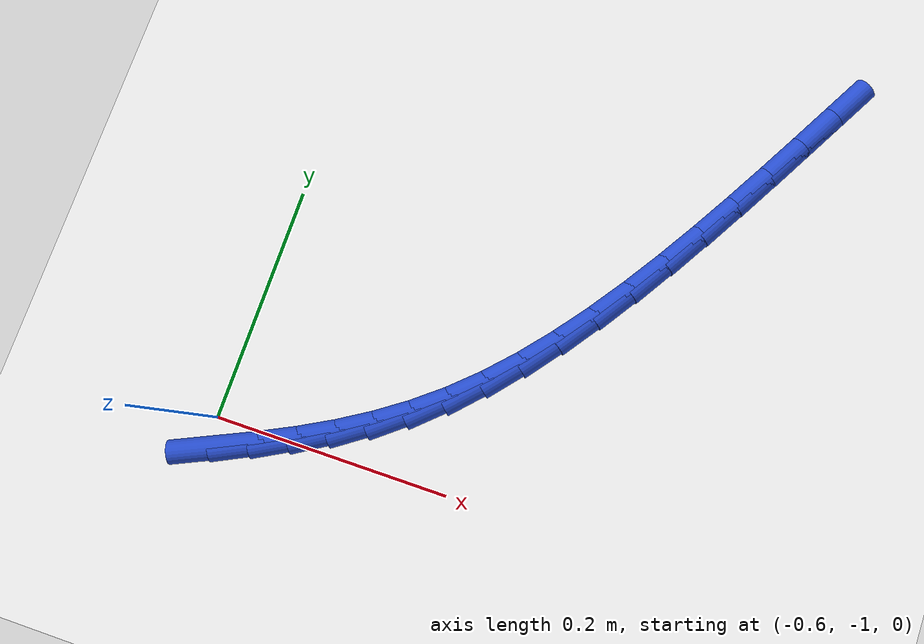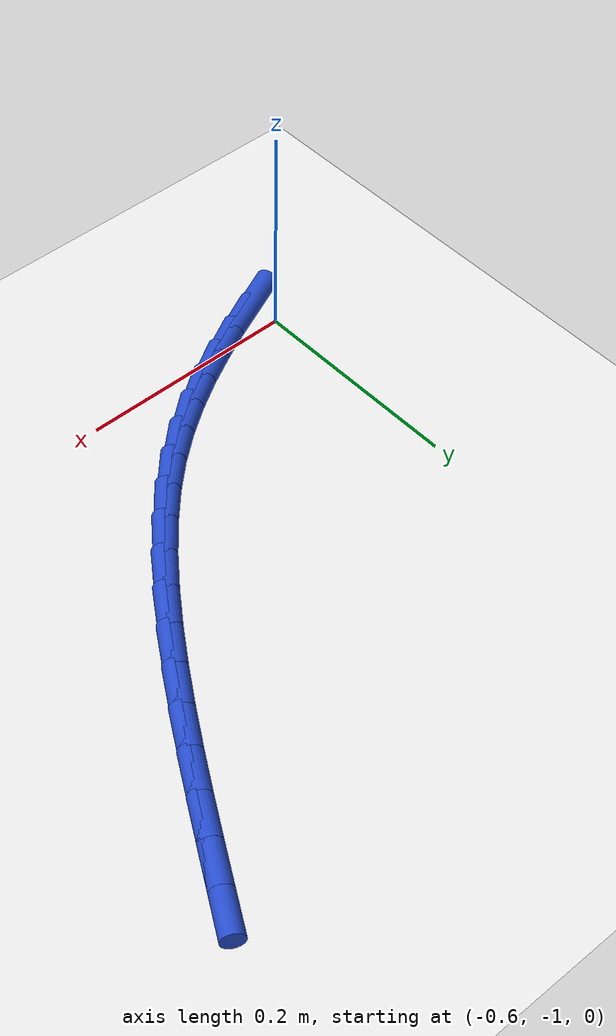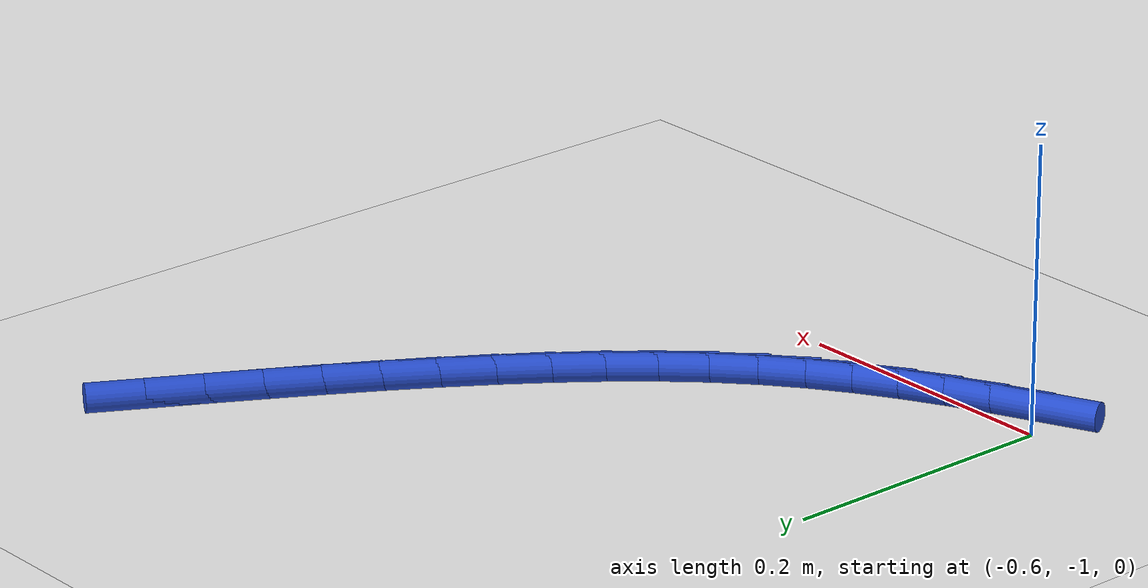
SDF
<sdf version="1.6">
 <world name="default">
  <model name="ground_plane">
   <static>1</static>
   <link name="link">
    <collision name="collision">
     <geometry><plane><normal>0 0 1</normal><size>100 100</size></plane></geometry>
     <surface><friction><ode><mu>100</mu><mu2>50</mu2></ode></friction></surface>
    </collision>
    <visual name="visual">
     <cast_shadows>0</cast_shadows>
     <geometry><plane><normal>0 0 1</normal><size>100 100</size></plane></geometry>
     <material>
      <script><uri>file://media/materials/scripts/gazebo.material</uri><name>Gazebo/WhiteGlow</name></script>
     </material>
    </visual>
   </link>
  </model>
  <model name="line">
   <link name="link_176">
    <pose>-0.5875828172011949 -1.0216153455883414 0.01 0 1.57 0.42339597536660534</pose>
    <collision name="collision">
     <geometry><cylinder><radius>0.01</radius><length>0.08</length></cylinder></geometry>
    </collision>
    <visual name="visual">
     <material>
      <script><name>Gazebo/Blue</name><uri>file://media/materials/scripts/gazebo.material</uri></script>
     </material>
     <geometry><cylinder><radius>0.01</radius><length>0.08</length></cylinder></geometry>
    </visual>
   </link>
   <link name="link_177">
    <pose>-0.5576132053573409 -1.0081094808719315 0.01 0 1.57 0.45502316544602234</pose>
    <collision name="collision">
     <geometry><cylinder><radius>0.01</radius><length>0.08</length></cylinder></geometry>
    </collision>
    <visual name="visual">
     <material>
      <script><name>Gazebo/Blue</name><uri>file://media/materials/scripts/gazebo.material</uri></script>
     </material>
     <geometry><cylinder><radius>0.01</radius><length>0.08</length></cylinder></geometry>
    </visual>
   </link>
   <link name="link_178">
    <pose>-0.5287030088568608 -0.9939647200197931 0.01 0 1.57 0.49657695041433797</pose>
    <collision name="collision">
     <geometry><cylinder><radius>0.01</radius><length>0.08</length></cylinder></geometry>
    </collision>
    <visual name="visual">
     <material>
      <script><name>Gazebo/Blue</name><uri>file://media/materials/scripts/gazebo.material</uri></script>
     </material>
     <geometry><cylinder><radius>0.01</radius><length>0.08</length></cylinder></geometry>
    </visual>
   </link>
   <link name="link_179">
    <pose>-0.5008143464244045 -0.9788527986550711 0.01 0 1.57 0.5476124282187314</pose>
    <collision name="collision">
     <geometry><cylinder><radius>0.01</radius><length>0.08</length></cylinder></geometry>
    </collision>
    <visual name="visual">
     <material>
      <script><name>Gazebo/Blue</name><uri>file://media/materials/scripts/gazebo.material</uri></script>
     </material>
     <geometry><cylinder><radius>0.01</radius><length>0.08</length></cylinder></geometry>
    </visual>
   </link>
   <link name="link_180">
    <pose>-0.47390933678462216 -0.9624454524009125 0.01 0 1.57 0.6070860722191753</pose>
    <collision name="collision">
     <geometry><cylinder><radius>0.01</radius><length>0.08</length></cylinder></geometry>
    </collision>
    <visual name="visual">
     <material>
      <script><name>Gazebo/Blue</name><uri>file://media/materials/scripts/gazebo.material</uri></script>
     </material>
     <geometry><cylinder><radius>0.01</radius><length>0.08</length></cylinder></geometry>
    </visual>
   </link>
   <link name="link_181">
    <pose>-0.4479500986621639 -0.9444144168804623 0.01 0 1.57 0.6733254377851698</pose>
    <collision name="collision">
     <geometry><cylinder><radius>0.01</radius><length>0.08</length></cylinder></geometry>
    </collision>
    <visual name="visual">
     <material>
      <script><name>Gazebo/Blue</name><uri>file://media/materials/scripts/gazebo.material</uri></script>
     </material>
     <geometry><cylinder><radius>0.01</radius><length>0.08</length></cylinder></geometry>
    </visual>
   </link>
   <link name="link_182">
    <pose>-0.4228987507816797 -0.9244314277168667 0.01 0 1.57 0.7437917523756384</pose>
    <collision name="collision">
     <geometry><cylinder><radius>0.01</radius><length>0.08</length></cylinder></geometry>
    </collision>
    <visual name="visual">
     <material>
      <script><name>Gazebo/Blue</name><uri>file://media/materials/scripts/gazebo.material</uri></script>
     </material>
     <geometry><cylinder><radius>0.01</radius><length>0.08</length></cylinder></geometry>
    </visual>
   </link>
   <link name="link_183">
    <pose>-0.39871671799292546 -0.9021823426035044 0.01 0 1.57 0.8099721002649177</pose>
    <collision name="collision">
     <geometry><cylinder><radius>0.01</radius><length>0.08</length></cylinder></geometry>
    </collision>
    <visual name="visual">
     <material>
      <script><name>Gazebo/Blue</name><uri>file://media/materials/scripts/gazebo.material</uri></script>
     </material>
     <geometry><cylinder><radius>0.01</radius><length>0.08</length></cylinder></geometry>
    </visual>
   </link>
   <link name="link_184">
    <pose>-0.3753513518892208 -0.8776394448091553 0.01 0 1.57 0.8661649480975883</pose>
    <collision name="collision">
     <geometry><cylinder><radius>0.01</radius><length>0.08</length></cylinder></geometry>
    </collision>
    <visual name="visual">
     <material>
      <script><name>Gazebo/Blue</name><uri>file://media/materials/scripts/gazebo.material</uri></script>
     </material>
     <geometry><cylinder><radius>0.01</radius><length>0.08</length></cylinder></geometry>
    </visual>
   </link>
   <link name="link_185">
    <pose>-0.35273690503254973 -0.8510416152876448 0.01 0 1.57 0.9133170585215903</pose>
    <collision name="collision">
     <geometry><cylinder><radius>0.01</radius><length>0.08</length></cylinder></geometry>
    </collision>
    <visual name="visual">
     <material>
      <script><name>Gazebo/Blue</name><uri>file://media/materials/scripts/gazebo.material</uri></script>
     </material>
     <geometry><cylinder><radius>0.01</radius><length>0.08</length></cylinder></geometry>
    </visual>
   </link>
   <link name="link_186">
    <pose>-0.33080713126941586 -0.8226378850862844 0.01 0 1.57 0.9525184127119606</pose>
    <collision name="collision">
     <geometry><cylinder><radius>0.01</radius><length>0.08</length></cylinder></geometry>
    </collision>
    <visual name="visual">
     <material>
      <script><name>Gazebo/Blue</name><uri>file://media/materials/scripts/gazebo.material</uri></script>
     </material>
     <geometry><cylinder><radius>0.01</radius><length>0.08</length></cylinder></geometry>
    </visual>
   </link>
   <link name="link_187">
    <pose>-0.3094957844463231 -0.7926772852523866 0.01 0 1.57 0.9847104496738025</pose>
    <collision name="collision">
     <geometry><cylinder><radius>0.01</radius><length>0.08</length></cylinder></geometry>
    </collision>
    <visual name="visual">
     <material>
      <script><name>Gazebo/Blue</name><uri>file://media/materials/scripts/gazebo.material</uri></script>
     </material>
     <geometry><cylinder><radius>0.01</radius><length>0.08</length></cylinder></geometry>
    </visual>
   </link>
   <link name="link_188">
    <pose>-0.28873661840977527 -0.7614088468332629 0.01 0 1.57 1.010670219078939</pose>
    <collision name="collision">
     <geometry><cylinder><radius>0.01</radius><length>0.08</length></cylinder></geometry>
    </collision>
    <visual name="visual">
     <material>
      <script><name>Gazebo/Blue</name><uri>file://media/materials/scripts/gazebo.material</uri></script>
     </material>
     <geometry><cylinder><radius>0.01</radius><length>0.08</length></cylinder></geometry>
    </visual>
   </link>
   <link name="link_189">
    <pose>-0.26846338700627553 -0.7290816008762251 0.01 0 1.57 1.031013254557026</pose>
    <collision name="collision">
     <geometry><cylinder><radius>0.01</radius><length>0.08</length></cylinder></geometry>
    </collision>
    <visual name="visual">
     <material>
      <script><name>Gazebo/Blue</name><uri>file://media/materials/scripts/gazebo.material</uri></script>
     </material>
     <geometry><cylinder><radius>0.01</radius><length>0.08</length></cylinder></geometry>
    </visual>
   </link>
   <link name="link_190">
    <pose>-0.24860984408232864 -0.695944578428586 0.01 0 1.57 1.0462035778675967</pose>
    <collision name="collision">
     <geometry><cylinder><radius>0.01</radius><length>0.08</length></cylinder></geometry>
    </collision>
    <visual name="visual">
     <material>
      <script><name>Gazebo/Blue</name><uri>file://media/materials/scripts/gazebo.material</uri></script>
     </material>
     <geometry><cylinder><radius>0.01</radius><length>0.08</length></cylinder></geometry>
    </visual>
   </link>
   <link name="link_191">
    <pose>-0.2291097434844379 -0.6622468105376573 0.01 0 1.57 1.0565644624264772</pose>
    <collision name="collision">
     <geometry><cylinder><radius>0.01</radius><length>0.08</length></cylinder></geometry>
    </collision>
    <visual name="visual">
     <material>
      <script><name>Gazebo/Blue</name><uri>file://media/materials/scripts/gazebo.material</uri></script>
     </material>
     <geometry><cylinder><radius>0.01</radius><length>0.08</length></cylinder></geometry>
    </visual>
   </link>
   <link name="link_192">
    <pose>-0.20989683905910708 -0.6282373282507511 0.01 0 1.57 1.0622865972270854</pose>
    <collision name="collision">
     <geometry><cylinder><radius>0.01</radius><length>0.08</length></cylinder></geometry>
    </collision>
    <visual name="visual">
     <material>
      <script><name>Gazebo/Blue</name><uri>file://media/materials/scripts/gazebo.material</uri></script>
     </material>
     <geometry><cylinder><radius>0.01</radius><length>0.08</length></cylinder></geometry>
    </visual>
   </link>
   <link name="link_193">
    <pose>-0.19090488465283997 -0.5941651626151792 0.01 0 1.57 1.0634331929965342</pose>
    <collision name="collision">
     <geometry><cylinder><radius>0.01</radius><length>0.08</length></cylinder></geometry>
    </collision>
    <visual name="visual">
     <material>
      <script><name>Gazebo/Blue</name><uri>file://media/materials/scripts/gazebo.material</uri></script>
     </material>
     <geometry><cylinder><radius>0.01</radius><length>0.08</length></cylinder></geometry>
    </visual>
   </link>
  </model>
 </world>
</sdf>
